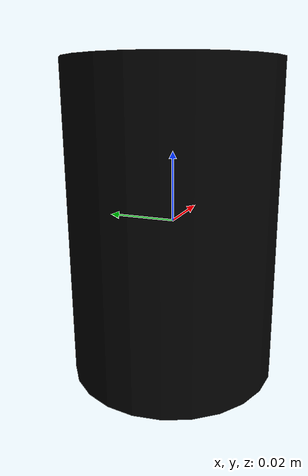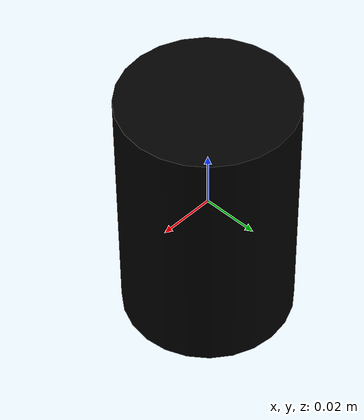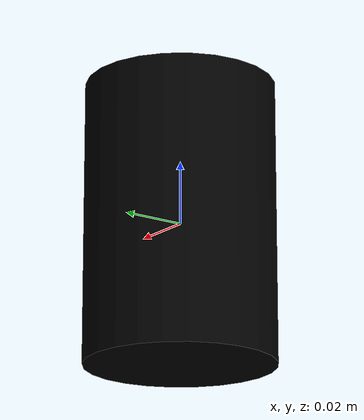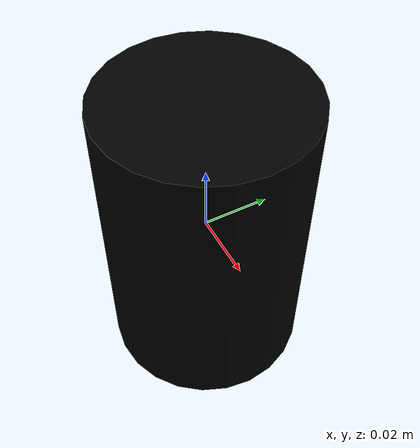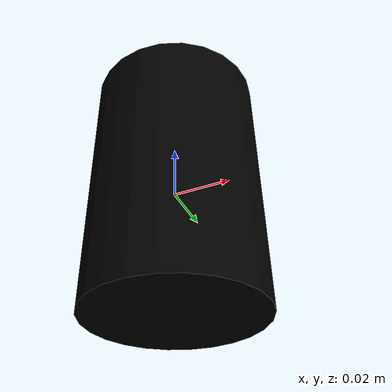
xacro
<?xml version="1.0"?>

<robot xmlns:xacro="http://ros.org/wiki/xacro" name="c5_xacro">
    <xacro:arg name="x" default="0"/>
    <xacro:arg name="y" default="0"/>
    <xacro:arg name="z" default="0"/>

    <link name="sensor_link">
        <inertial>
            <origin xyz="$(arg x) $(arg y) $(arg z)" />
            <mass value="3.2" />
            <inertia ixx="0.0" ixy="0.0" ixz="0.0" iyy="0.0" iyz="0.0" izz="0.0" />
        </inertial>
        <visual>
            <origin xyz="$(arg x) $(arg y) $(arg z)"/>
            <geometry>
                <cylinder length="0.09" radius="0.03"/>
            </geometry>
            <material name="black">
                <color rgba="0 0 0 1"/>
            </material>
        </visual>
        <collision>
            <origin xyz="$(arg x) $(arg y) $(arg z)"/>
            <geometry>
                <cylinder length="0.09" radius="0.03"/>
            </geometry>
        </collision>
    </link>

    <gazebo reference="sensor_link">
        <static>true</static>
        <sensor type="gpu_ray" name="leica_sensor">
            <pose>0 0 0 0 0 0</pose>
            <visualize>true</visualize>
            <update_rate>40</update_rate>
            <ray>
                <scan>
                    <horizontal>
                        <samples>512</samples>
                        <resolution>1</resolution>
                        <min_angle>-1.04</min_angle> <!-- Be sure the angle between min and max angle is > 1.5708 -->
                        <max_angle>0.8</max_angle>
                    </horizontal>
                </scan>
                <range>
                    <min>0.15</min>
                    <max>8.0</max>
                    <resolution>0.004</resolution>
                </range>
                <noise>
                    <type>gaussian</type>
                    <mean>0.0</mean>
                    <stddev>0.0</stddev>
                </noise>
            </ray>
            <plugin name="leica_plugin" filename="libleica_plugin.so">
                <topicName>/c5/simulator/scan</topicName>
                <frameName>sensor_link</frameName>
            </plugin>
        </sensor>
    </gazebo>

</robot>
